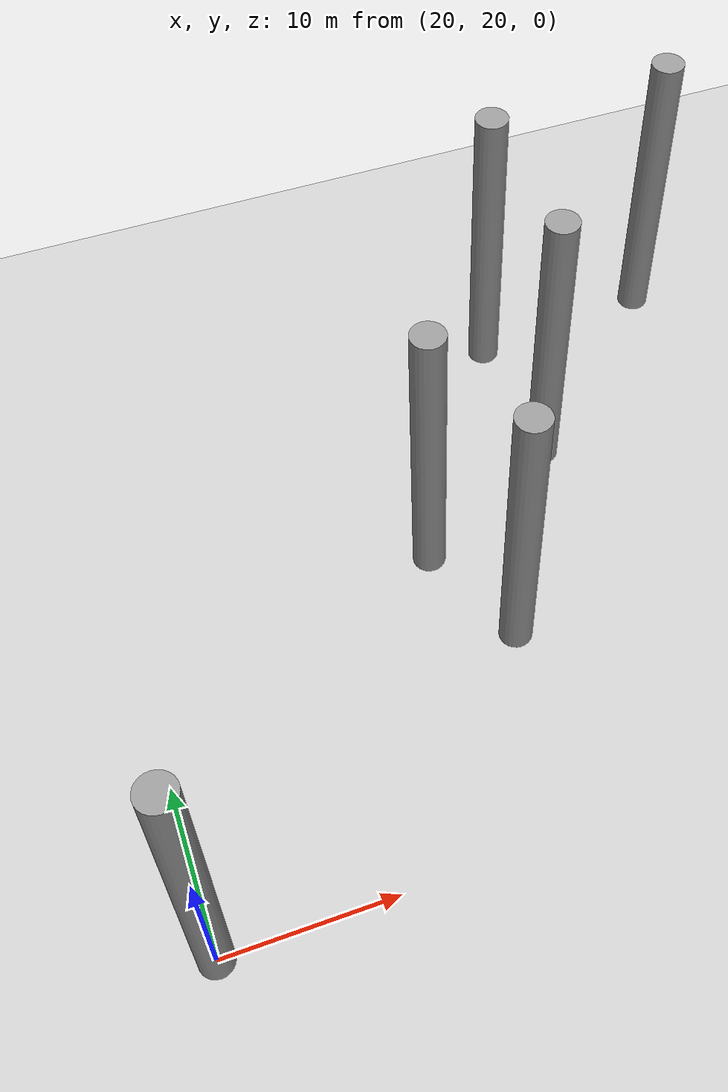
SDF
<sdf version="1.6">
 <world name="default">
  <light name="sun" type="directional">
   <pose>0 0 10 0 -0 0</pose>
   <diffuse>0.8 0.8 0.8 1</diffuse>
   <specular>0.2 0.2 0.2 1</specular>
   <attenuation>
    <range>1000</range>
    <constant>0.9</constant>
    <linear>0.01</linear>
    <quadratic>0.001</quadratic>
   </attenuation>
   <direction>-0.5 0.1 -0.9</direction>
  </light>
  <model name="ground_plane">
   <static>1</static>
   <link name="link">
    <collision name="collision">
     <geometry><plane><normal>0 0 1</normal><size>100 100</size></plane></geometry>
     <surface><friction><ode><mu>100</mu><mu2>50</mu2></ode></friction></surface>
    </collision>
    <visual name="visual">
     <cast_shadows>0</cast_shadows>
     <geometry><plane><normal>0 0 1</normal><size>100 100</size></plane></geometry>
     <material>
      <script><uri>file://media/materials/scripts/gazebo.material</uri><name>Gazebo/Grey</name></script>
     </material>
    </visual>
   </link>
  </model>
  <gravity>0 0 -9.8</gravity>
  <magnetic_field>6e-06 2.3e-05 -4.2e-05</magnetic_field>
  <atmosphere type="adiabatic"/>
  <physics name="default_physics" default="0" type="ode">
   <max_step_size>0.001</max_step_size>
   <real_time_factor>1</real_time_factor>
   <real_time_update_rate>1000</real_time_update_rate>
  </physics>
  <scene><ambient>0.4 0.4 0.4 1</ambient><background>0.7 0.7 0.7 1</background><shadows>1</shadows></scene>
  <spherical_coordinates>
   <surface_model>EARTH_WGS84</surface_model>
   <latitude_deg>0</latitude_deg>
   <longitude_deg>0</longitude_deg>
   <elevation>0</elevation>
   <heading_deg>0</heading_deg>
  </spherical_coordinates>
  <model name="unit_cylinder">
   <pose>19.9988 20.002 9.99999 1e-06 1e-06 -0.011927</pose>
   <link name="link">
    <inertial>
     <mass>1</mass>
     <inertia><ixx>0.145833</ixx><ixy>0</ixy><ixz>0</ixz><iyy>0.145833</iyy><iyz>0</iyz><izz>0.125</izz></inertia>
    </inertial>
    <collision name="collision">
     <geometry><cylinder><radius>1</radius><length>20</length></cylinder></geometry>
    </collision>
    <visual name="visual">
     <geometry><cylinder><radius>1</radius><length>20</length></cylinder></geometry>
     <material>
      <script><name>Gazebo/Grey</name><uri>file://media/materials/scripts/gazebo.material</uri></script>
     </material>
    </visual>
   </link>
  </model>
  <model name="unit_cylinder_clone">
   <pose>38.5831 39.6055 9.99999 1e-06 1e-06 -0.011897</pose>
   <link name="link">
    <inertial>
     <mass>1</mass>
     <inertia><ixx>0.145833</ixx><ixy>0</ixy><ixz>0</ixz><iyy>0.145833</iyy><iyz>0</iyz><izz>0.125</izz></inertia>
    </inertial>
    <collision name="collision">
     <geometry><cylinder><radius>1</radius><length>20</length></cylinder></geometry>
    </collision>
    <visual name="visual">
     <geometry><cylinder><radius>1</radius><length>20</length></cylinder></geometry>
     <material>
      <script><name>Gazebo/Grey</name><uri>file://media/materials/scripts/gazebo.material</uri></script>
     </material>
    </visual>
   </link>
  </model>
  <model name="unit_cylinder_clone_0">
   <pose>47.8393 54.3956 9.99999 1e-06 1e-06 -0.011766</pose>
   <link name="link">
    <inertial>
     <mass>1</mass>
     <inertia><ixx>0.145833</ixx><ixy>0</ixy><ixz>0</ixz><iyy>0.145833</iyy><iyz>0</iyz><izz>0.125</izz></inertia>
    </inertial>
    <collision name="collision">
     <geometry><cylinder><radius>1</radius><length>20</length></cylinder></geometry>
    </collision>
    <visual name="visual">
     <geometry><cylinder><radius>1</radius><length>20</length></cylinder></geometry>
     <material>
      <script><name>Gazebo/Grey</name><uri>file://media/materials/scripts/gazebo.material</uri></script>
     </material>
    </visual>
   </link>
  </model>
  <model name="unit_cylinder_clone_1">
   <pose>41.563 32.7982 9.99999 1e-06 1e-06 -0.011897</pose>
   <link name="link">
    <inertial>
     <mass>1</mass>
     <inertia><ixx>0.145833</ixx><ixy>0</ixy><ixz>0</ixz><iyy>0.145833</iyy><iyz>0</iyz><izz>0.125</izz></inertia>
    </inertial>
    <collision name="collision">
     <geometry><cylinder><radius>1</radius><length>20</length></cylinder></geometry>
    </collision>
    <visual name="visual">
     <geometry><cylinder><radius>1</radius><length>20</length></cylinder></geometry>
     <material>
      <script><name>Gazebo/Grey</name><uri>file://media/materials/scripts/gazebo.material</uri></script>
     </material>
    </visual>
   </link>
  </model>
  <model name="unit_cylinder_clone_2">
   <pose>48.2664 44.9653 10 1e-06 1e-06 -0.011826</pose>
   <link name="link">
    <inertial>
     <mass>1</mass>
     <inertia><ixx>0.145833</ixx><ixy>0</ixy><ixz>0</ixz><iyy>0.145833</iyy><iyz>0</iyz><izz>0.125</izz></inertia>
    </inertial>
    <collision name="collision">
     <geometry><cylinder><radius>1</radius><length>20</length></cylinder></geometry>
    </collision>
    <visual name="visual">
     <geometry><cylinder><radius>1</radius><length>20</length></cylinder></geometry>
     <material>
      <script><name>Gazebo/Grey</name><uri>file://media/materials/scripts/gazebo.material</uri></script>
     </material>
    </visual>
   </link>
  </model>
  <model name="unit_cylinder_clone_3">
   <pose>59.6356 55.5554 9.99999 1e-06 1e-06 -0.011812</pose>
   <link name="link">
    <inertial>
     <mass>1</mass>
     <inertia><ixx>0.145833</ixx><ixy>0</ixy><ixz>0</ixz><iyy>0.145833</iyy><iyz>0</iyz><izz>0.125</izz></inertia>
    </inertial>
    <collision name="collision">
     <geometry><cylinder><radius>1</radius><length>20</length></cylinder></geometry>
    </collision>
    <visual name="visual">
     <geometry><cylinder><radius>1</radius><length>20</length></cylinder></geometry>
     <material>
      <script><name>Gazebo/Grey</name><uri>file://media/materials/scripts/gazebo.material</uri></script>
     </material>
    </visual>
   </link>
  </model>
 </world>
</sdf>
